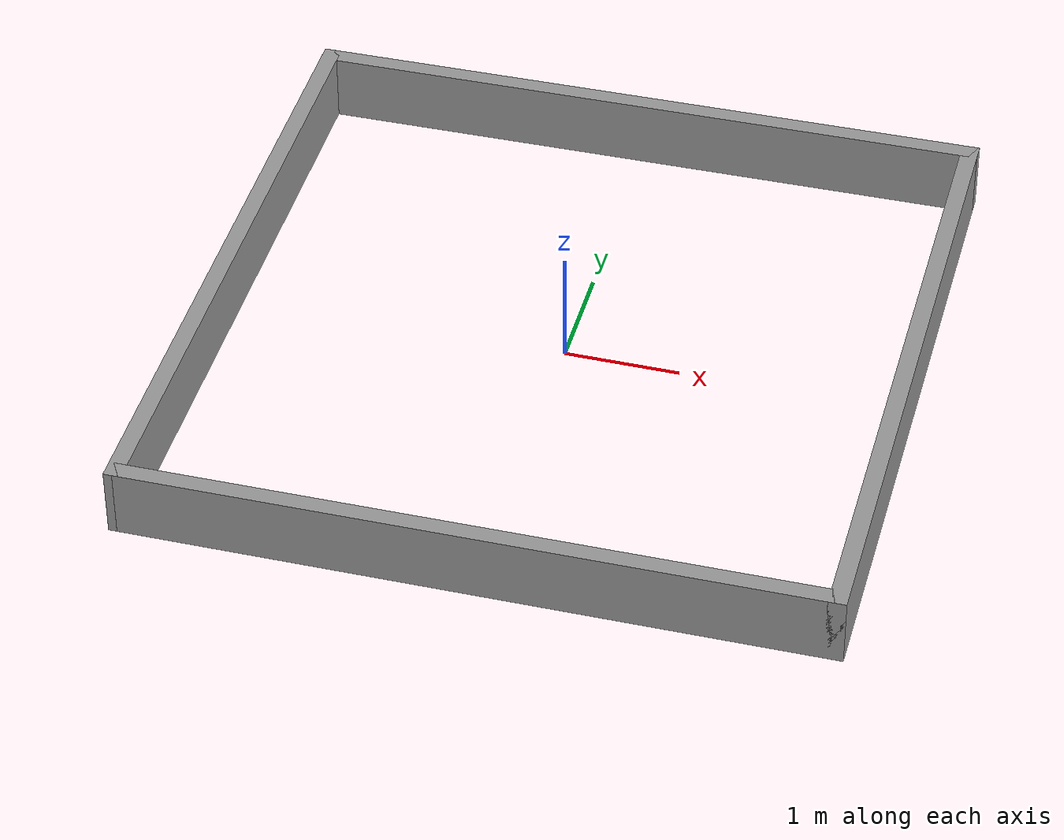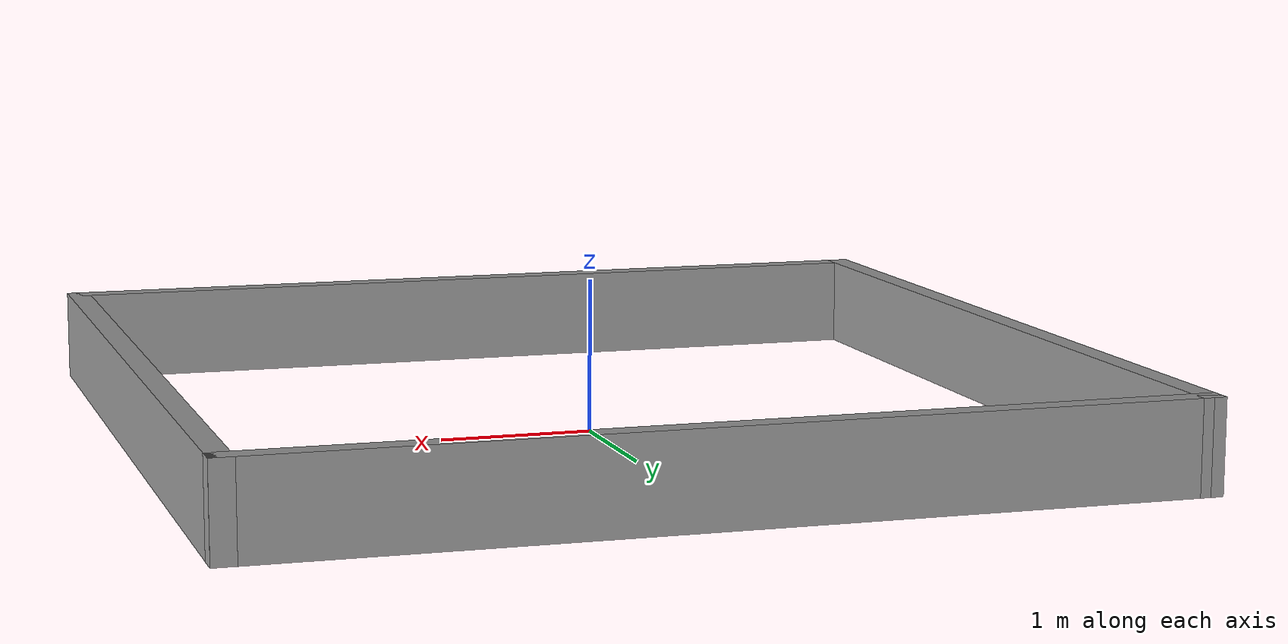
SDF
<?xml version='1.0'?>
<sdf version='1.7'>
  <model name='empty'>
    <pose>-0.0015 -0.045 0 0 -0 0</pose>
    <link name='Wall_3'>
      <collision name='Wall_3_Collision'>
        <geometry>
          <box>
            <size>6 0.15 0.6</size>
          </box>
        </geometry>
        <pose>0 0 0.3 0 -0 0</pose>
      </collision>
      <visual name='Wall_3_Visual'>
        <pose>0 0 0.3 0 -0 0</pose>
        <geometry>
          <box>
            <size>6 0.15 0.6</size>
          </box>
        </geometry>
        <material>
          <script>
            <uri>file://media/materials/scripts/gazebo.material</uri>
            <name>Gazebo/Grey</name>
          </script>
          <ambient>1 1 1 1</ambient>
        </material>
        <meta>
          <layer>0</layer>
        </meta>
      </visual>
      <pose>0.0105 -2.925 0 0 -0 0</pose>
    </link>
    <link name='Wall_4'>
      <collision name='Wall_4_Collision'>
        <geometry>
          <box>
            <size>6 0.15 0.6</size>
          </box>
        </geometry>
        <pose>0 0 0.3 0 -0 0</pose>
      </collision>
      <visual name='Wall_4_Visual'>
        <pose>0 0 0.3 0 -0 0</pose>
        <geometry>
          <box>
            <size>6 0.15 0.6</size>
          </box>
        </geometry>
        <material>
          <script>
            <uri>file://media/materials/scripts/gazebo.material</uri>
            <name>Gazebo/Grey</name>
          </script>
          <ambient>1 1 1 1</ambient>
        </material>
        <meta>
          <layer>0</layer>
        </meta>
      </visual>
      <pose>2.9355 0 0 0 -0 1.5708</pose>
    </link>
    <link name='Wall_5'>
      <collision name='Wall_5_Collision'>
        <geometry>
          <box>
            <size>6.02187 0.15 0.6</size>
          </box>
        </geometry>
        <pose>0 0 0.3 0 -0 0</pose>
      </collision>
      <visual name='Wall_5_Visual'>
        <pose>0 0 0.3 0 -0 0</pose>
        <geometry>
          <box>
            <size>6.02187 0.15 0.6</size>
          </box>
        </geometry>
        <material>
          <script>
            <uri>file://media/materials/scripts/gazebo.material</uri>
            <name>Gazebo/Grey</name>
          </script>
          <ambient>1 1 1 1</ambient>
        </material>
        <meta>
          <layer>0</layer>
        </meta>
      </visual>
      <pose>-0 2.925 0 0 -0 3.14159</pose>
    </link>
    <link name='Wall_6'>
      <collision name='Wall_6_Collision'>
        <geometry>
          <box>
            <size>6 0.15 0.6</size>
          </box>
        </geometry>
        <pose>0 0 0.3 0 -0 0</pose>
      </collision>
      <visual name='Wall_6_Visual'>
        <pose>0 0 0.3 0 -0 0</pose>
        <geometry>
          <box>
            <size>6 0.15 0.6</size>
          </box>
        </geometry>
        <material>
          <script>
            <uri>file://media/materials/scripts/gazebo.material</uri>
            <name>Gazebo/Grey</name>
          </script>
          <ambient>1 1 1 1</ambient>
        </material>
        <meta>
          <layer>0</layer>
        </meta>
      </visual>
      <pose>-2.928 0 0 0 -0 -1.56823</pose>
    </link>
    <static>1</static>
  </model>
</sdf>
